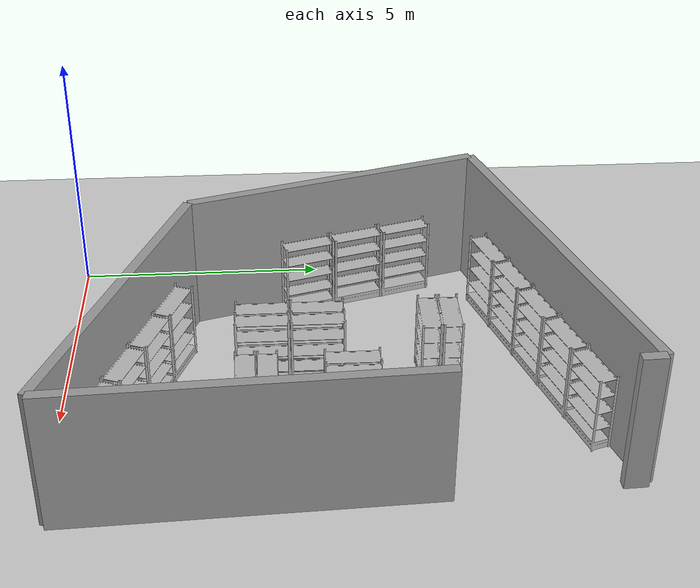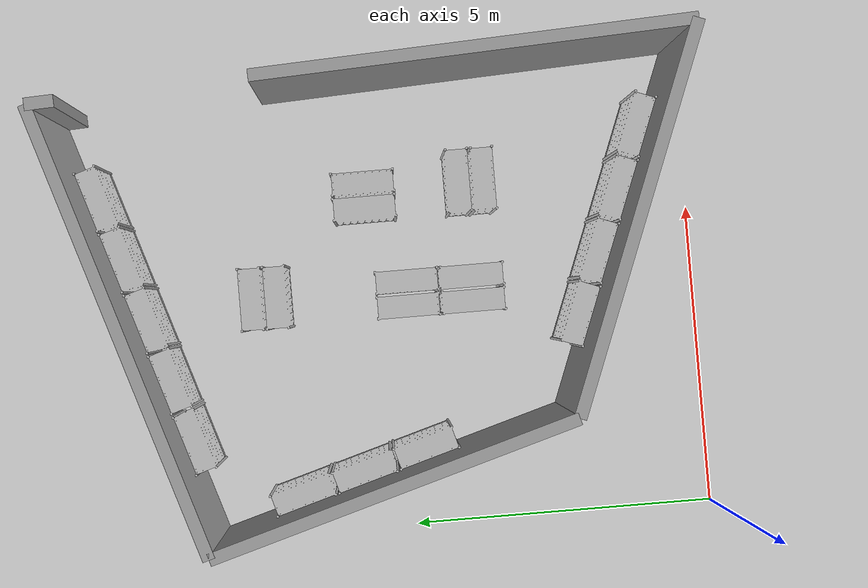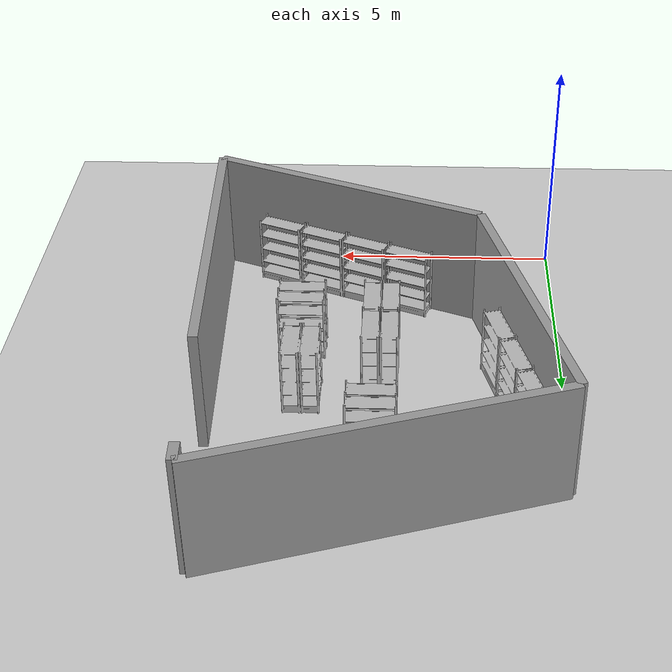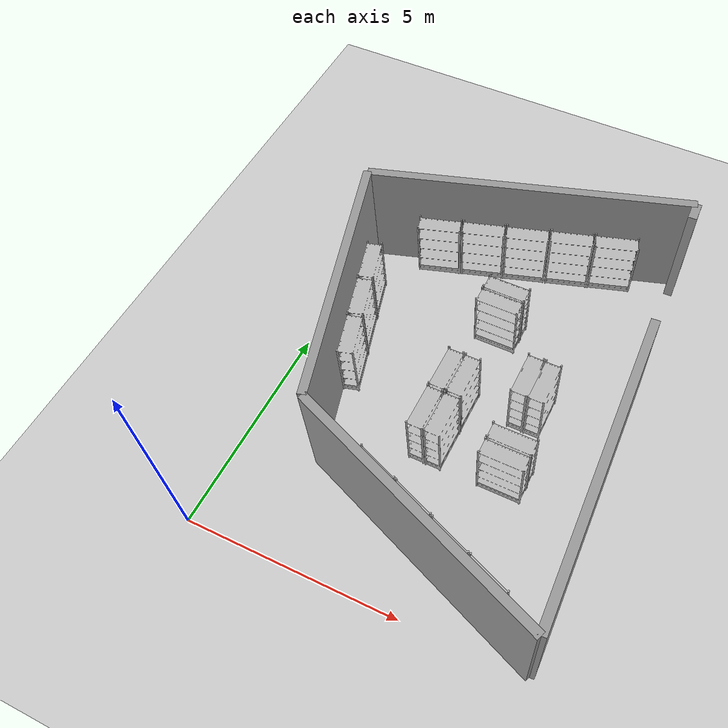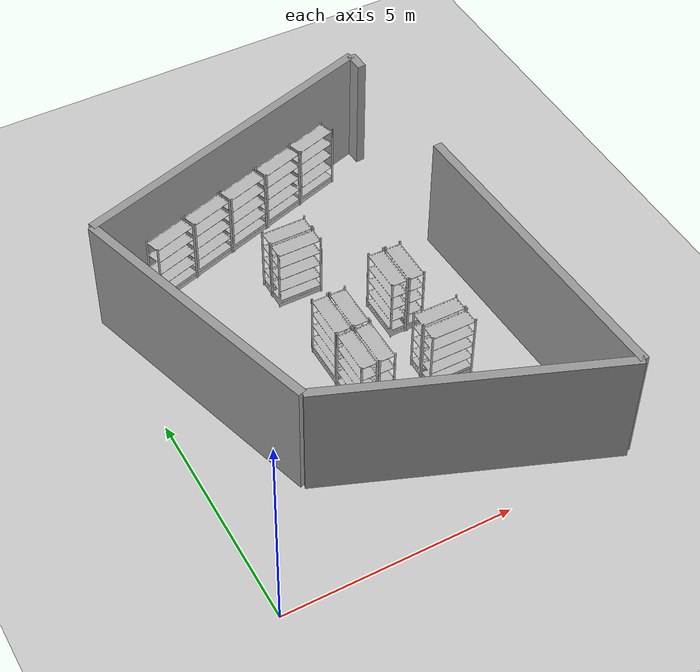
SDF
<sdf version="1.6">
  <world name="default">
    <light name="sun" type="directional">
      <cast_shadows>1</cast_shadows>
      <pose frame="">0 0 10 0 -0 0</pose>
      <diffuse>0.8 0.8 0.8 1</diffuse>
      <specular>0.2 0.2 0.2 1</specular>
      <attenuation>
        <range>1000</range>
        <constant>0.9</constant>
        <linear>0.01</linear>
        <quadratic>0.001</quadratic>
      </attenuation>
      <direction>-0.5 0.1 -0.9</direction>
    </light>
    <model name="ground_plane">
      <static>1</static>
      <link name="link">
        <collision name="collision">
          <geometry>
            <plane>
              <normal>0 0 1</normal>
              <size>100 100</size>
            </plane>
          </geometry>
          <surface>
            <contact>
              <collide_bitmask>65535</collide_bitmask>
              <ode />
            </contact>
            <friction>
              <ode>
                <mu>1000</mu>
                <mu2>1000</mu2>
              </ode>
              <torsional>
                <ode />
              </torsional>
            </friction>
            <bounce />
          </surface>
          <max_contacts>10</max_contacts>
        </collision>
        <visual name="visual">
          <cast_shadows>0</cast_shadows>
          <geometry>
            <plane>
              <normal>0 0 1</normal>
              <size>100 100</size>
            </plane>
          </geometry>
          <material>
            <script>
              <uri>file://media/materials/scripts/gazebo.material</uri>
              <name>Gazebo/Grey</name>
            </script>
          </material>
        </visual>
        <self_collide>0</self_collide>
        <enable_wind>0</enable_wind>
        <kinematic>0</kinematic>
      </link>
    </model>
    <gravity>0 0 -9.8</gravity>
    <magnetic_field>6e-06 2.3e-05 -4.2e-05</magnetic_field>
    <atmosphere type="adiabatic" />
    <physics name="default_physics" default="0" type="ode">
      <max_step_size>0.001</max_step_size>
      <real_time_factor>1</real_time_factor>
      <real_time_update_rate>1000</real_time_update_rate>
    </physics>
    <scene>
      <ambient>0.4 0.4 0.4 1</ambient>
      <background>0.7 0.7 0.7 1</background>
      <shadows>1</shadows>
    </scene>
    <audio>
      <device>default</device>
    </audio>
    <wind />
    <spherical_coordinates>
      <surface_model>EARTH_WGS84</surface_model>
      <latitude_deg>0</latitude_deg>
      <longitude_deg>0</longitude_deg>
      <elevation>0</elevation>
      <heading_deg>0</heading_deg>
    </spherical_coordinates>
    <gui fullscreen="0">
      <camera name="user_camera">
        <pose frame="">5.5458 -17.3868 19.7357 0 0.841797 1.67218</pose>
        <view_controller>orbit</view_controller>
        <projection_type>perspective</projection_type>
      </camera>
    </gui>
    <plugin name="ActorPosesPlugin" filename="libActorPosesPlugin.so" />
    <model name="store_shelf_moduled_0">
      <link name="link">
        <collision name="collision">
          <geometry>
            <mesh>
              <uri>model://store_shelf_moduled/meshes/store_shelf_moduled.dae</uri>
            </mesh>
          </geometry>
        </collision>
        <visual name="visual">
          <geometry>
            <mesh>
              <uri>model://store_shelf_moduled/meshes/store_shelf_moduled.dae</uri>
            </mesh>
          </geometry>
        </visual>
        <inertial>
          <mass>1000</mass>
          <inertia>
            <ixx>840083</ixx>
            <ixy>0</ixy>
            <ixz>0</ixz>
            <iyy>475500</iyy>
            <iyz>0</iyz>
            <izz>1.30208e+06</izz>
          </inertia>
        </inertial>
        <self_collide>0</self_collide>
        <enable_wind>0</enable_wind>
        <kinematic>0</kinematic>
      </link>
      <static>1</static>
      <pose frame="">2.806305 2.133177 0 0 0 -0.3715367</pose>
    </model>
    <model name="store_shelf_moduled_1">
      <link name="link">
        <collision name="collision">
          <geometry>
            <mesh>
              <uri>model://store_shelf_moduled/meshes/store_shelf_moduled.dae</uri>
            </mesh>
          </geometry>
        </collision>
        <visual name="visual">
          <geometry>
            <mesh>
              <uri>model://store_shelf_moduled/meshes/store_shelf_moduled.dae</uri>
            </mesh>
          </geometry>
        </visual>
        <inertial>
          <mass>1000</mass>
          <inertia>
            <ixx>840083</ixx>
            <ixy>0</ixy>
            <ixz>0</ixz>
            <iyy>475500</iyy>
            <iyz>0</iyz>
            <izz>1.30208e+06</izz>
          </inertia>
        </inertial>
        <self_collide>0</self_collide>
        <enable_wind>0</enable_wind>
        <kinematic>0</kinematic>
      </link>
      <static>1</static>
      <pose frame="">3.796305 1.753177 0 0 0 -0.3715367</pose>
    </model>
    <model name="store_shelf_moduled_2">
      <link name="link">
        <collision name="collision">
          <geometry>
            <mesh>
              <uri>model://store_shelf_moduled/meshes/store_shelf_moduled.dae</uri>
            </mesh>
          </geometry>
        </collision>
        <visual name="visual">
          <geometry>
            <mesh>
              <uri>model://store_shelf_moduled/meshes/store_shelf_moduled.dae</uri>
            </mesh>
          </geometry>
        </visual>
        <inertial>
          <mass>1000</mass>
          <inertia>
            <ixx>840083</ixx>
            <ixy>0</ixy>
            <ixz>0</ixz>
            <iyy>475500</iyy>
            <iyz>0</iyz>
            <izz>1.30208e+06</izz>
          </inertia>
        </inertial>
        <self_collide>0</self_collide>
        <enable_wind>0</enable_wind>
        <kinematic>0</kinematic>
      </link>
      <static>1</static>
      <pose frame="">4.786304 1.363177 0 0 0 -0.3715367</pose>
    </model>
    <model name="store_shelf_moduled_3">
      <link name="link">
        <collision name="collision">
          <geometry>
            <mesh>
              <uri>model://store_shelf_moduled/meshes/store_shelf_moduled.dae</uri>
            </mesh>
          </geometry>
        </collision>
        <visual name="visual">
          <geometry>
            <mesh>
              <uri>model://store_shelf_moduled/meshes/store_shelf_moduled.dae</uri>
            </mesh>
          </geometry>
        </visual>
        <inertial>
          <mass>1000</mass>
          <inertia>
            <ixx>840083</ixx>
            <ixy>0</ixy>
            <ixz>0</ixz>
            <iyy>475500</iyy>
            <iyz>0</iyz>
            <izz>1.30208e+06</izz>
          </inertia>
        </inertial>
        <self_collide>0</self_collide>
        <enable_wind>0</enable_wind>
        <kinematic>0</kinematic>
      </link>
      <static>1</static>
      <pose frame="">5.776305 0.983177 0 0 0 -0.3715367</pose>
    </model>
    <model name="store_shelf_moduled_4">
      <link name="link">
        <collision name="collision">
          <geometry>
            <mesh>
              <uri>model://store_shelf_moduled/meshes/store_shelf_moduled.dae</uri>
            </mesh>
          </geometry>
        </collision>
        <visual name="visual">
          <geometry>
            <mesh>
              <uri>model://store_shelf_moduled/meshes/store_shelf_moduled.dae</uri>
            </mesh>
          </geometry>
        </visual>
        <inertial>
          <mass>1000</mass>
          <inertia>
            <ixx>840083</ixx>
            <ixy>0</ixy>
            <ixz>0</ixz>
            <iyy>475500</iyy>
            <iyz>0</iyz>
            <izz>1.30208e+06</izz>
          </inertia>
        </inertial>
        <self_collide>0</self_collide>
        <enable_wind>0</enable_wind>
        <kinematic>0</kinematic>
      </link>
      <static>1</static>
      <pose frame="">6.309948 10.12459 0 0 0 -2.837443</pose>
    </model>
    <model name="store_shelf_moduled_5">
      <link name="link">
        <collision name="collision">
          <geometry>
            <mesh>
              <uri>model://store_shelf_moduled/meshes/store_shelf_moduled.dae</uri>
            </mesh>
          </geometry>
        </collision>
        <visual name="visual">
          <geometry>
            <mesh>
              <uri>model://store_shelf_moduled/meshes/store_shelf_moduled.dae</uri>
            </mesh>
          </geometry>
        </visual>
        <inertial>
          <mass>1000</mass>
          <inertia>
            <ixx>840083</ixx>
            <ixy>0</ixy>
            <ixz>0</ixz>
            <iyy>475500</iyy>
            <iyz>0</iyz>
            <izz>1.30208e+06</izz>
          </inertia>
        </inertial>
        <self_collide>0</self_collide>
        <enable_wind>0</enable_wind>
        <kinematic>0</kinematic>
      </link>
      <static>1</static>
      <pose frame="">5.299948 9.80459 0 0 0 -2.837443</pose>
    </model>
    <model name="store_shelf_moduled_6">
      <link name="link">
        <collision name="collision">
          <geometry>
            <mesh>
              <uri>model://store_shelf_moduled/meshes/store_shelf_moduled.dae</uri>
            </mesh>
          </geometry>
        </collision>
        <visual name="visual">
          <geometry>
            <mesh>
              <uri>model://store_shelf_moduled/meshes/store_shelf_moduled.dae</uri>
            </mesh>
          </geometry>
        </visual>
        <inertial>
          <mass>1000</mass>
          <inertia>
            <ixx>840083</ixx>
            <ixy>0</ixy>
            <ixz>0</ixz>
            <iyy>475500</iyy>
            <iyz>0</iyz>
            <izz>1.30208e+06</izz>
          </inertia>
        </inertial>
        <self_collide>0</self_collide>
        <enable_wind>0</enable_wind>
        <kinematic>0</kinematic>
      </link>
      <static>1</static>
      <pose frame="">4.289948 9.48459 0 0 0 -2.837443</pose>
    </model>
    <model name="store_shelf_moduled_7">
      <link name="link">
        <collision name="collision">
          <geometry>
            <mesh>
              <uri>model://store_shelf_moduled/meshes/store_shelf_moduled.dae</uri>
            </mesh>
          </geometry>
        </collision>
        <visual name="visual">
          <geometry>
            <mesh>
              <uri>model://store_shelf_moduled/meshes/store_shelf_moduled.dae</uri>
            </mesh>
          </geometry>
        </visual>
        <inertial>
          <mass>1000</mass>
          <inertia>
            <ixx>840083</ixx>
            <ixy>0</ixy>
            <ixz>0</ixz>
            <iyy>475500</iyy>
            <iyz>0</iyz>
            <izz>1.30208e+06</izz>
          </inertia>
        </inertial>
        <self_collide>0</self_collide>
        <enable_wind>0</enable_wind>
        <kinematic>0</kinematic>
      </link>
      <static>1</static>
      <pose frame="">3.279948 9.17459 0 0 0 -2.837443</pose>
    </model>
    <model name="store_shelf_moduled_8">
      <link name="link">
        <collision name="collision">
          <geometry>
            <mesh>
              <uri>model://store_shelf_moduled/meshes/store_shelf_moduled.dae</uri>
            </mesh>
          </geometry>
        </collision>
        <visual name="visual">
          <geometry>
            <mesh>
              <uri>model://store_shelf_moduled/meshes/store_shelf_moduled.dae</uri>
            </mesh>
          </geometry>
        </visual>
        <inertial>
          <mass>1000</mass>
          <inertia>
            <ixx>840083</ixx>
            <ixy>0</ixy>
            <ixz>0</ixz>
            <iyy>475500</iyy>
            <iyz>0</iyz>
            <izz>1.30208e+06</izz>
          </inertia>
        </inertial>
        <self_collide>0</self_collide>
        <enable_wind>0</enable_wind>
        <kinematic>0</kinematic>
      </link>
      <static>1</static>
      <pose frame="">2.269948 8.854589 0 0 0 -2.837443</pose>
    </model>
    <model name="store_shelf_moduled_9">
      <link name="link">
        <collision name="collision">
          <geometry>
            <mesh>
              <uri>model://store_shelf_moduled/meshes/store_shelf_moduled.dae</uri>
            </mesh>
          </geometry>
        </collision>
        <visual name="visual">
          <geometry>
            <mesh>
              <uri>model://store_shelf_moduled/meshes/store_shelf_moduled.dae</uri>
            </mesh>
          </geometry>
        </visual>
        <inertial>
          <mass>1000</mass>
          <inertia>
            <ixx>840083</ixx>
            <ixy>0</ixy>
            <ixz>0</ixz>
            <iyy>475500</iyy>
            <iyz>0</iyz>
            <izz>1.30208e+06</izz>
          </inertia>
        </inertial>
        <self_collide>0</self_collide>
        <enable_wind>0</enable_wind>
        <kinematic>0</kinematic>
      </link>
      <static>1</static>
      <pose frame="">0.4860714 7.287754 0 0 0 -1.289564</pose>
    </model>
    <model name="store_shelf_moduled_10">
      <link name="link">
        <collision name="collision">
          <geometry>
            <mesh>
              <uri>model://store_shelf_moduled/meshes/store_shelf_moduled.dae</uri>
            </mesh>
          </geometry>
        </collision>
        <visual name="visual">
          <geometry>
            <mesh>
              <uri>model://store_shelf_moduled/meshes/store_shelf_moduled.dae</uri>
            </mesh>
          </geometry>
        </visual>
        <inertial>
          <mass>1000</mass>
          <inertia>
            <ixx>840083</ixx>
            <ixy>0</ixy>
            <ixz>0</ixz>
            <iyy>475500</iyy>
            <iyz>0</iyz>
            <izz>1.30208e+06</izz>
          </inertia>
        </inertial>
        <self_collide>0</self_collide>
        <enable_wind>0</enable_wind>
        <kinematic>0</kinematic>
      </link>
      <static>1</static>
      <pose frame="">0.7760714 6.267754 0 0 0 -1.289564</pose>
    </model>
    <model name="store_shelf_moduled_11">
      <link name="link">
        <collision name="collision">
          <geometry>
            <mesh>
              <uri>model://store_shelf_moduled/meshes/store_shelf_moduled.dae</uri>
            </mesh>
          </geometry>
        </collision>
        <visual name="visual">
          <geometry>
            <mesh>
              <uri>model://store_shelf_moduled/meshes/store_shelf_moduled.dae</uri>
            </mesh>
          </geometry>
        </visual>
        <inertial>
          <mass>1000</mass>
          <inertia>
            <ixx>840083</ixx>
            <ixy>0</ixy>
            <ixz>0</ixz>
            <iyy>475500</iyy>
            <iyz>0</iyz>
            <izz>1.30208e+06</izz>
          </inertia>
        </inertial>
        <self_collide>0</self_collide>
        <enable_wind>0</enable_wind>
        <kinematic>0</kinematic>
      </link>
      <static>1</static>
      <pose frame="">1.076071 5.247754 0 0 0 -1.289564</pose>
    </model>
    <model name="store_shelf_moduled_12">
      <link name="link">
        <collision name="collision">
          <geometry>
            <mesh>
              <uri>model://store_shelf_moduled/meshes/store_shelf_moduled.dae</uri>
            </mesh>
          </geometry>
        </collision>
        <visual name="visual">
          <geometry>
            <mesh>
              <uri>model://store_shelf_moduled/meshes/store_shelf_moduled.dae</uri>
            </mesh>
          </geometry>
        </visual>
        <inertial>
          <mass>1000</mass>
          <inertia>
            <ixx>840083</ixx>
            <ixy>0</ixy>
            <ixz>0</ixz>
            <iyy>475500</iyy>
            <iyz>0</iyz>
            <izz>1.30208e+06</izz>
          </inertia>
        </inertial>
        <self_collide>0</self_collide>
        <enable_wind>0</enable_wind>
        <kinematic>0</kinematic>
      </link>
      <static>1</static>
      <pose frame="">3.93 3.3 0 0 0 1.570796</pose>
    </model>
    <model name="store_shelf_moduled_13">
      <link name="link">
        <collision name="collision">
          <geometry>
            <mesh>
              <uri>model://store_shelf_moduled/meshes/store_shelf_moduled.dae</uri>
            </mesh>
          </geometry>
        </collision>
        <visual name="visual">
          <geometry>
            <mesh>
              <uri>model://store_shelf_moduled/meshes/store_shelf_moduled.dae</uri>
            </mesh>
          </geometry>
        </visual>
        <inertial>
          <mass>1000</mass>
          <inertia>
            <ixx>840083</ixx>
            <ixy>0</ixy>
            <ixz>0</ixz>
            <iyy>475500</iyy>
            <iyz>0</iyz>
            <izz>1.30208e+06</izz>
          </inertia>
        </inertial>
        <self_collide>0</self_collide>
        <enable_wind>0</enable_wind>
        <kinematic>0</kinematic>
      </link>
      <static>1</static>
      <pose frame="">3.93 4.36 0 0 0 -1.570796</pose>
    </model>
    <model name="store_shelf_moduled_14">
      <link name="link">
        <collision name="collision">
          <geometry>
            <mesh>
              <uri>model://store_shelf_moduled/meshes/store_shelf_moduled.dae</uri>
            </mesh>
          </geometry>
        </collision>
        <visual name="visual">
          <geometry>
            <mesh>
              <uri>model://store_shelf_moduled/meshes/store_shelf_moduled.dae</uri>
            </mesh>
          </geometry>
        </visual>
        <inertial>
          <mass>1000</mass>
          <inertia>
            <ixx>840083</ixx>
            <ixy>0</ixy>
            <ixz>0</ixz>
            <iyy>475500</iyy>
            <iyz>0</iyz>
            <izz>1.30208e+06</izz>
          </inertia>
        </inertial>
        <self_collide>0</self_collide>
        <enable_wind>0</enable_wind>
        <kinematic>0</kinematic>
      </link>
      <static>1</static>
      <pose frame="">3.93 4.36 0 0 0 1.570796</pose>
    </model>
    <model name="store_shelf_moduled_15">
      <link name="link">
        <collision name="collision">
          <geometry>
            <mesh>
              <uri>model://store_shelf_moduled/meshes/store_shelf_moduled.dae</uri>
            </mesh>
          </geometry>
        </collision>
        <visual name="visual">
          <geometry>
            <mesh>
              <uri>model://store_shelf_moduled/meshes/store_shelf_moduled.dae</uri>
            </mesh>
          </geometry>
        </visual>
        <inertial>
          <mass>1000</mass>
          <inertia>
            <ixx>840083</ixx>
            <ixy>0</ixy>
            <ixz>0</ixz>
            <iyy>475500</iyy>
            <iyz>0</iyz>
            <izz>1.30208e+06</izz>
          </inertia>
        </inertial>
        <self_collide>0</self_collide>
        <enable_wind>0</enable_wind>
        <kinematic>0</kinematic>
      </link>
      <static>1</static>
      <pose frame="">3.93 5.42 0 0 0 -1.570796</pose>
    </model>
    <model name="store_shelf_moduled_16">
      <link name="link">
        <collision name="collision">
          <geometry>
            <mesh>
              <uri>model://store_shelf_moduled/meshes/store_shelf_moduled.dae</uri>
            </mesh>
          </geometry>
        </collision>
        <visual name="visual">
          <geometry>
            <mesh>
              <uri>model://store_shelf_moduled/meshes/store_shelf_moduled.dae</uri>
            </mesh>
          </geometry>
        </visual>
        <inertial>
          <mass>1000</mass>
          <inertia>
            <ixx>840083</ixx>
            <ixy>0</ixy>
            <ixz>0</ixz>
            <iyy>475500</iyy>
            <iyz>0</iyz>
            <izz>1.30208e+06</izz>
          </inertia>
        </inertial>
        <self_collide>0</self_collide>
        <enable_wind>0</enable_wind>
        <kinematic>0</kinematic>
      </link>
      <static>1</static>
      <pose frame="">3.51 7.22 0 0 0 0</pose>
    </model>
    <model name="store_shelf_moduled_17">
      <link name="link">
        <collision name="collision">
          <geometry>
            <mesh>
              <uri>model://store_shelf_moduled/meshes/store_shelf_moduled.dae</uri>
            </mesh>
          </geometry>
        </collision>
        <visual name="visual">
          <geometry>
            <mesh>
              <uri>model://store_shelf_moduled/meshes/store_shelf_moduled.dae</uri>
            </mesh>
          </geometry>
        </visual>
        <inertial>
          <mass>1000</mass>
          <inertia>
            <ixx>840083</ixx>
            <ixy>0</ixy>
            <ixz>0</ixz>
            <iyy>475500</iyy>
            <iyz>0</iyz>
            <izz>1.30208e+06</izz>
          </inertia>
        </inertial>
        <self_collide>0</self_collide>
        <enable_wind>0</enable_wind>
        <kinematic>0</kinematic>
      </link>
      <static>1</static>
      <pose frame="">4.57 7.22 0 0 0 -3.141593</pose>
    </model>
    <model name="store_shelf_moduled_18">
      <link name="link">
        <collision name="collision">
          <geometry>
            <mesh>
              <uri>model://store_shelf_moduled/meshes/store_shelf_moduled.dae</uri>
            </mesh>
          </geometry>
        </collision>
        <visual name="visual">
          <geometry>
            <mesh>
              <uri>model://store_shelf_moduled/meshes/store_shelf_moduled.dae</uri>
            </mesh>
          </geometry>
        </visual>
        <inertial>
          <mass>1000</mass>
          <inertia>
            <ixx>840083</ixx>
            <ixy>0</ixy>
            <ixz>0</ixz>
            <iyy>475500</iyy>
            <iyz>0</iyz>
            <izz>1.30208e+06</izz>
          </inertia>
        </inertial>
        <self_collide>0</self_collide>
        <enable_wind>0</enable_wind>
        <kinematic>0</kinematic>
      </link>
      <static>1</static>
      <pose frame="">5.15 3.72 0 0 0 0</pose>
    </model>
    <model name="store_shelf_moduled_19">
      <link name="link">
        <collision name="collision">
          <geometry>
            <mesh>
              <uri>model://store_shelf_moduled/meshes/store_shelf_moduled.dae</uri>
            </mesh>
          </geometry>
        </collision>
        <visual name="visual">
          <geometry>
            <mesh>
              <uri>model://store_shelf_moduled/meshes/store_shelf_moduled.dae</uri>
            </mesh>
          </geometry>
        </visual>
        <inertial>
          <mass>1000</mass>
          <inertia>
            <ixx>840083</ixx>
            <ixy>0</ixy>
            <ixz>0</ixz>
            <iyy>475500</iyy>
            <iyz>0</iyz>
            <izz>1.30208e+06</izz>
          </inertia>
        </inertial>
        <self_collide>0</self_collide>
        <enable_wind>0</enable_wind>
        <kinematic>0</kinematic>
      </link>
      <static>1</static>
      <pose frame="">6.21 3.72 0 0 0 -3.141593</pose>
    </model>
    <model name="store_shelf_moduled_20">
      <link name="link">
        <collision name="collision">
          <geometry>
            <mesh>
              <uri>model://store_shelf_moduled/meshes/store_shelf_moduled.dae</uri>
            </mesh>
          </geometry>
        </collision>
        <visual name="visual">
          <geometry>
            <mesh>
              <uri>model://store_shelf_moduled/meshes/store_shelf_moduled.dae</uri>
            </mesh>
          </geometry>
        </visual>
        <inertial>
          <mass>1000</mass>
          <inertia>
            <ixx>840083</ixx>
            <ixy>0</ixy>
            <ixz>0</ixz>
            <iyy>475500</iyy>
            <iyz>0</iyz>
            <izz>1.30208e+06</izz>
          </inertia>
        </inertial>
        <self_collide>0</self_collide>
        <enable_wind>0</enable_wind>
        <kinematic>0</kinematic>
      </link>
      <static>1</static>
      <pose frame="">5.57 4.94 0 0 0 1.570796</pose>
    </model>
    <model name="store_shelf_moduled_21">
      <link name="link">
        <collision name="collision">
          <geometry>
            <mesh>
              <uri>model://store_shelf_moduled/meshes/store_shelf_moduled.dae</uri>
            </mesh>
          </geometry>
        </collision>
        <visual name="visual">
          <geometry>
            <mesh>
              <uri>model://store_shelf_moduled/meshes/store_shelf_moduled.dae</uri>
            </mesh>
          </geometry>
        </visual>
        <inertial>
          <mass>1000</mass>
          <inertia>
            <ixx>840083</ixx>
            <ixy>0</ixy>
            <ixz>0</ixz>
            <iyy>475500</iyy>
            <iyz>0</iyz>
            <izz>1.30208e+06</izz>
          </inertia>
        </inertial>
        <self_collide>0</self_collide>
        <enable_wind>0</enable_wind>
        <kinematic>0</kinematic>
      </link>
      <static>1</static>
      <pose frame="">5.57 6 0 0 0 -1.570796</pose>
    </model>
    <model name="grey_wall0">
      <static>1</static>
      <link name="link">
        <pose frame="">4.78 1.265 1.4 0 0 -0.3715367</pose>
        <visual name="visual">
          <cast_shadows>0</cast_shadows>
          <geometry>
            <box>
              <size>6.417889 0.2 2.8</size>
            </box>
          </geometry>
          <material>
            <name>vrc/grey_wall</name>
            <script>
              <uri>model://grey_wall/materials/scripts</uri>
              <uri>model://grey_wall/materials/textures</uri>
              <name>vrc/grey_wall</name>
            </script>
          </material>
        </visual>
        <collision name="collision">
          <geometry>
            <box>
              <size>6.417889 0.2 2.8</size>
            </box>
          </geometry>
          <max_contacts>5</max_contacts>
        </collision>
      </link>
    </model>
    <model name="grey_wall1">
      <static>1</static>
      <link name="link">
        <pose frame="">7.615 3.59 1.4 0 0 1.61518</pose>
        <visual name="visual">
          <cast_shadows>0</cast_shadows>
          <geometry>
            <box>
              <size>6.98688 0.2 2.8</size>
            </box>
          </geometry>
          <material>
            <name>vrc/grey_wall</name>
            <script>
              <uri>model://grey_wall/materials/scripts</uri>
              <uri>model://grey_wall/materials/textures</uri>
              <name>vrc/grey_wall</name>
            </script>
          </material>
        </visual>
        <collision name="collision">
          <geometry>
            <box>
              <size>6.98688 0.2 2.8</size>
            </box>
          </geometry>
          <max_contacts>5</max_contacts>
        </collision>
      </link>
    </model>
    <model name="grey_wall2">
      <static>1</static>
      <link name="link">
        <pose frame="">7.31 10.31 1.4 0 0 1.614247</pose>
        <visual name="visual">
          <cast_shadows>0</cast_shadows>
          <geometry>
            <box>
              <size>0.4604346 0.2 2.8</size>
            </box>
          </geometry>
          <material>
            <name>vrc/grey_wall</name>
            <script>
              <uri>model://grey_wall/materials/scripts</uri>
              <uri>model://grey_wall/materials/textures</uri>
              <name>vrc/grey_wall</name>
            </script>
          </material>
        </visual>
        <collision name="collision">
          <geometry>
            <box>
              <size>0.4604346 0.2 2.8</size>
            </box>
          </geometry>
          <max_contacts>5</max_contacts>
        </collision>
      </link>
    </model>
    <model name="grey_wall3">
      <static>1</static>
      <link name="link">
        <pose frame="">3.7 9.41 1.4 0 0 -2.837443</pose>
        <visual name="visual">
          <cast_shadows>0</cast_shadows>
          <geometry>
            <box>
              <size>7.546363 0.2 2.8</size>
            </box>
          </geometry>
          <material>
            <name>vrc/grey_wall</name>
            <script>
              <uri>model://grey_wall/materials/scripts</uri>
              <uri>model://grey_wall/materials/textures</uri>
              <name>vrc/grey_wall</name>
            </script>
          </material>
        </visual>
        <collision name="collision">
          <geometry>
            <box>
              <size>7.546363 0.2 2.8</size>
            </box>
          </geometry>
          <max_contacts>5</max_contacts>
        </collision>
      </link>
    </model>
    <model name="grey_wall4">
      <static>1</static>
      <link name="link">
        <pose frame="">0.945 5.355 1.4 0 0 -1.289564</pose>
        <visual name="visual">
          <cast_shadows>0</cast_shadows>
          <geometry>
            <box>
              <size>6.08922 0.2 2.8</size>
            </box>
          </geometry>
          <material>
            <name>vrc/grey_wall</name>
            <script>
              <uri>model://grey_wall/materials/scripts</uri>
              <uri>model://grey_wall/materials/textures</uri>
              <name>vrc/grey_wall</name>
            </script>
          </material>
        </visual>
        <collision name="collision">
          <geometry>
            <box>
              <size>6.08922 0.2 2.8</size>
            </box>
          </geometry>
          <max_contacts>5</max_contacts>
        </collision>
      </link>
    </model>
  </world>
</sdf>
